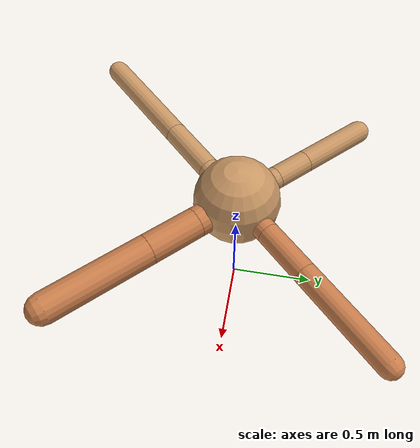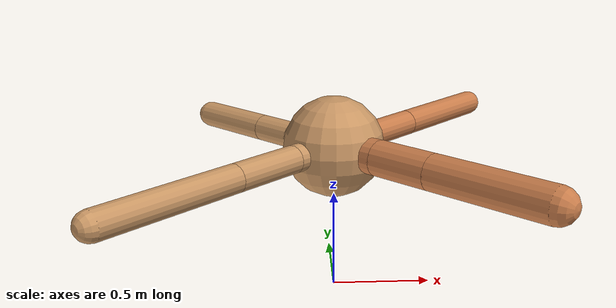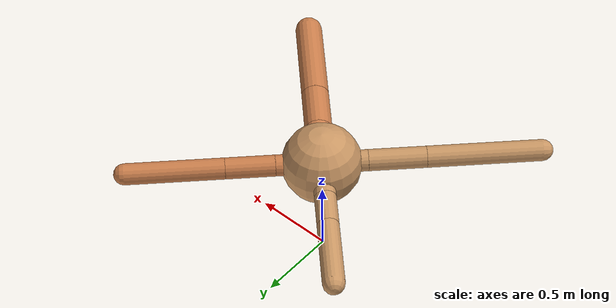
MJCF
<?xml version="1.0" ?>
<mujoco model="ant">

	<compiler angle="degree" coordinate="local" inertiafromgeom="true"/>

	<option integrator="RK4" timestep="0.01"/>

	<custom>

		<numeric data="0.0 0.0 0.55 1.0 0.0 0.0 0.0 0.0 1.0 0.0 -1.0 0.0 -1.0 0.0 1.0" name="init_qpos"/>

	</custom>

	<default>

		<joint armature="1" damping="1" limited="true"/>

		<geom conaffinity="0" condim="3" density="5.0" friction="1.5 0.1 0.1" margin="0.01" rgba="0.8 0.6 0.4 1"/>

	</default>

	<worldbody>

		<body name="torso" pos="0 0 0.75">

			<geom name="torso_geom" pos="0 0 0" size="0.24961012647342376" type="sphere"/>

			<!--joint armature="0" damping="0" limited="false" margin="0.01" name="root" pos="0 0 0" type="free"/-->

			<body name="front_left_leg" pos="0 0 0">

				<geom fromto="0 0 0 0.2 0.2 0" name="aux_1_geom" size="0.0660789930649642" type="capsule" rgba=".8 .5 .3 1"/>

				<body name="aux_1" pos="0.2 0.2 0">

					<joint axis="0 0 1" name="hip_1" pos="0.0 0.0 0.0" range="-40 40" type="hinge"/>

					<geom fromto="0 0 0 0.21633294194520136 0.21633294194520136 0" name="left_leg_geom" size="0.0660789930649642" type="capsule" rgba=".8 .5 .3 1"/>

					<body pos="0.21633294194520136 0.21633294194520136 0" name="front_left_foot">

						<joint axis="-1 1 0" name="ankle_1" pos="0.0 0.0 0.0" range="30 100" type="hinge"/>

						<geom fromto="0 0 0 0.4326658838904027 0.4326658838904027 0" name="left_ankle_geom" size="0.0660789930649642" type="capsule" rgba=".8 .5 .3 1"/>

					</body>

				</body>

			</body>

			<body name="front_right_leg" pos="0 0 0">

				<geom fromto="0 0 0 -0.2 0.2 0" name="aux_2_geom" size="0.06745927891023845" type="capsule"/>

				<body name="aux_2" pos="-0.2 0.2 0">

					<joint axis="0 0 1" name="hip_2" pos="0.0 0.0 0.0" range="-40 40" type="hinge"/>

					<geom fromto="0 0 0 -0.15277234024553582 0.15277234024553582 0" name="right_leg_geom" size="0.06745927891023845" type="capsule"/>

					<body pos="-0.15277234024553582 0.15277234024553582 0" name="front_right_foot">

						<joint axis="1 1 0" name="ankle_2" pos="0.0 0.0 0.0" range="-100 -30" type="hinge"/>

						<geom fromto="0 0 0 -0.30554468049107164 0.30554468049107164 0" name="right_ankle_geom" size="0.06745927891023845" type="capsule"/>

					</body>

				</body>

			</body>

			<body name="left_back_leg" pos="0 0 0">

				<geom fromto="0 0 0 -0.2 -0.2 0" name="aux_3_geom" size="0.06704515865371193" type="capsule"/>

				<body name="aux_3" pos="-0.2 -0.2 0">

					<joint axis="0 0 1" name="hip_3" pos="0.0 0.0 0.0" range="-40 40" type="hinge"/>

					<geom fromto="0 0 0 -0.25368372584045923 -0.25368372584045923 0" name="back_leg_geom" size="0.06704515865371193" type="capsule"/>

					<body pos="-0.25368372584045923 -0.25368372584045923 0" name="left_back_foot">

						<joint axis="-1 1 0" name="ankle_3" pos="0.0 0.0 0.0" range="-100 -30" type="hinge"/>

						<geom fromto="0 0 0 -0.5073674516809185 -0.5073674516809185 0" name="third_ankle_geom" size="0.06704515865371193" type="capsule"/>

					</body>

				</body>

			</body>

			<body name="right_back_leg" pos="0 0 0">

				<geom fromto="0 0 0 0.2 -0.2 0" name="aux_4_geom" size="0.08732511262596548" type="capsule" rgba=".8 .5 .3 1"/>

				<body name="aux_4" pos="0.2 -0.2 0">

					<joint axis="0 0 1" name="hip_4" pos="0.0 0.0 0.0" range="-40 40" type="hinge"/>

					<geom fromto="0 0 0 0.21571888210505108 -0.21571888210505108 0" name="rightback_leg_geom" size="0.08732511262596548" type="capsule" rgba=".8 .5 .3 1"/>

					<body pos="0.21571888210505108 -0.21571888210505108 0" name="right_back_foot">

						<joint axis="1 1 0" name="ankle_4" pos="0.0 0.0 0.0" range="30 100" type="hinge"/>

						<geom fromto="0 0 0 0.43143776421010216 -0.43143776421010216 0" name="fourth_ankle_geom" size="0.08732511262596548" type="capsule" rgba=".8 .5 .3 1"/>

					</body>

				</body>

			</body>

		</body>

	</worldbody>

	<actuator>

		<motor ctrllimited="true" ctrlrange="-1.0 1.0" joint="hip_4" gear="150"/>

		<motor ctrllimited="true" ctrlrange="-1.0 1.0" joint="ankle_4" gear="150"/>

		<motor ctrllimited="true" ctrlrange="-1.0 1.0" joint="hip_1" gear="150"/>

		<motor ctrllimited="true" ctrlrange="-1.0 1.0" joint="ankle_1" gear="150"/>

		<motor ctrllimited="true" ctrlrange="-1.0 1.0" joint="hip_2" gear="150"/>

		<motor ctrllimited="true" ctrlrange="-1.0 1.0" joint="ankle_2" gear="150"/>

		<motor ctrllimited="true" ctrlrange="-1.0 1.0" joint="hip_3" gear="150"/>

		<motor ctrllimited="true" ctrlrange="-1.0 1.0" joint="ankle_3" gear="150"/>

	</actuator>

</mujoco>
